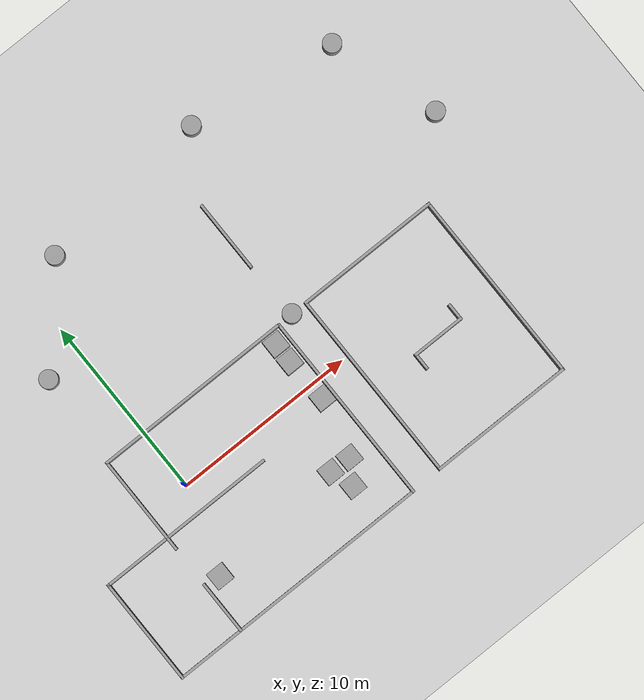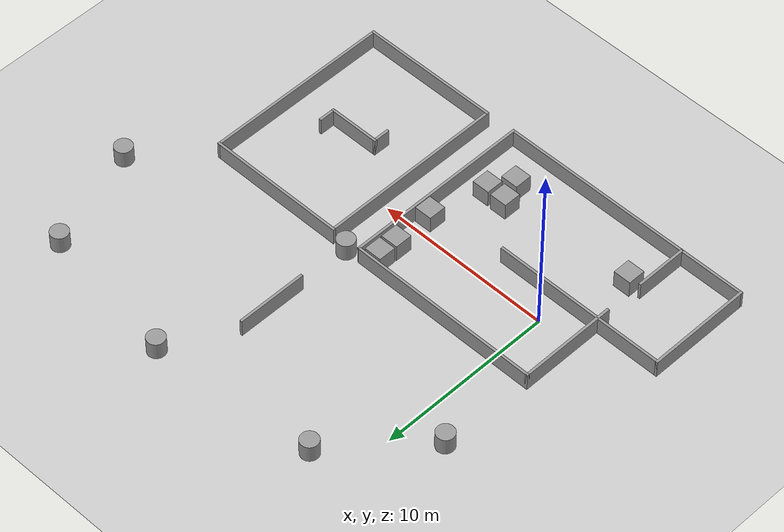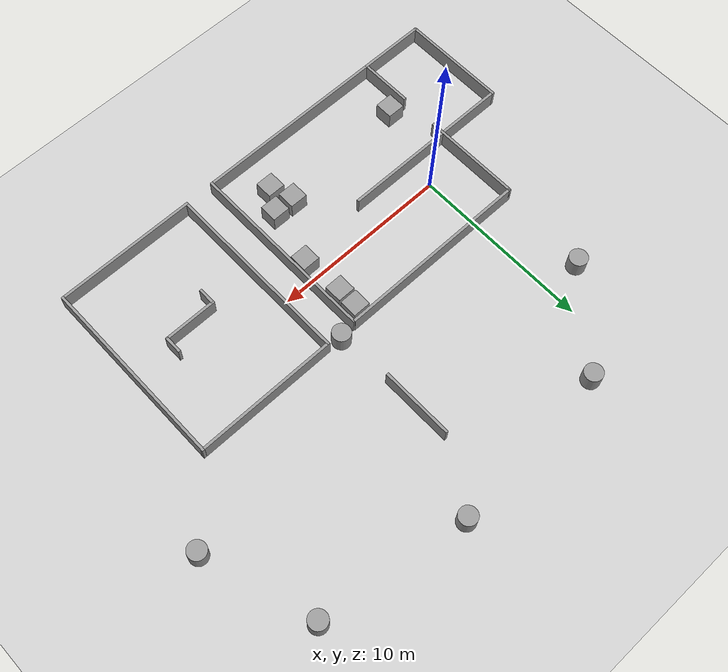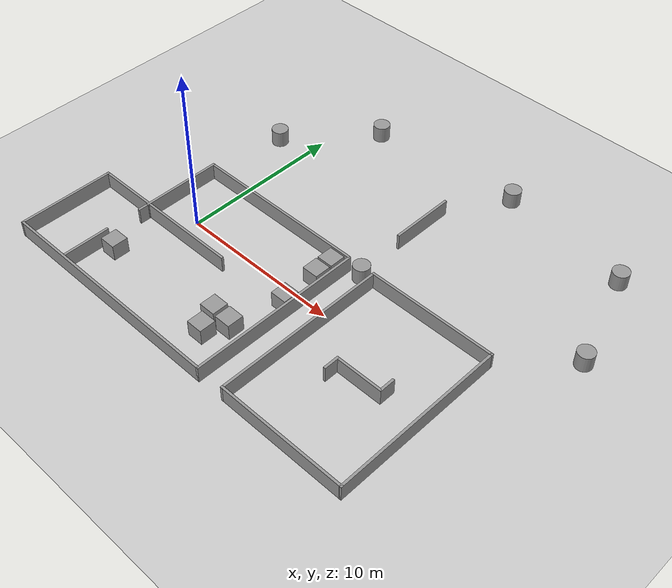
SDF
<sdf version="1.7">
 <world name="default">
  <light name="sun" type="directional">
   <pose>0 0 10 0 -0 0</pose>
   <diffuse>0.8 0.8 0.8 1</diffuse>
   <specular>0.2 0.2 0.2 1</specular>
   <attenuation>
    <range>1000</range>
    <constant>0.9</constant>
    <linear>0.01</linear>
    <quadratic>0.001</quadratic>
   </attenuation>
   <direction>-0.5 0.1 -0.9</direction>
   <spot><inner_angle>0</inner_angle><outer_angle>0</outer_angle><falloff>0</falloff></spot>
  </light>
  <model name="ground_plane">
   <static>1</static>
   <link name="link">
    <collision name="collision">
     <geometry><plane><normal>0 0 1</normal><size>100 100</size></plane></geometry>
     <surface>
      <contact><collide_bitmask>65535</collide_bitmask></contact>
      <friction><ode><mu>100</mu><mu2>50</mu2></ode></friction>
     </surface>
    </collision>
    <visual name="visual">
     <cast_shadows>0</cast_shadows>
     <geometry><plane><normal>0 0 1</normal><size>100 100</size></plane></geometry>
     <material>
      <script><uri>file://media/materials/scripts/gazebo.material</uri><name>Gazebo/Grey</name></script>
     </material>
    </visual>
   </link>
  </model>
  <gravity>0 0 -9.8</gravity>
  <magnetic_field>6e-06 2.3e-05 -4.2e-05</magnetic_field>
  <atmosphere type="adiabatic"/>
  <physics type="ode">
   <max_step_size>0.001</max_step_size>
   <real_time_factor>1</real_time_factor>
   <real_time_update_rate>1000</real_time_update_rate>
  </physics>
  <scene><ambient>0.4 0.4 0.4 1</ambient><background>0.7 0.7 0.7 1</background><shadows>1</shadows></scene>
  <spherical_coordinates>
   <surface_model>EARTH_WGS84</surface_model>
   <latitude_deg>0</latitude_deg>
   <longitude_deg>0</longitude_deg>
   <elevation>0</elevation>
   <heading_deg>0</heading_deg>
  </spherical_coordinates>
  <model name="racecar_rl_env3">
   <pose>6.0535 1.513 0 0 -0 0</pose>
   <link name="Wall_0">
    <collision name="Wall_0_Collision">
     <geometry><box><size>6 0.15 1</size></box></geometry>
     <pose>0 0 0.5 0 -0 0</pose>
    </collision>
    <visual name="Wall_0_Visual">
     <pose>0 0 0.5 0 -0 0</pose>
     <geometry><box><size>6 0.15 1</size></box></geometry>
     <material>
      <script><uri>file://media/materials/scripts/gazebo.material</uri><name>Gazebo/Grey</name></script>
      <ambient>1 1 1 1</ambient>
     </material>
     <meta><layer>0</layer></meta>
    </visual>
    <pose>-12.1305 -5.889 0 0 -0 1.5708</pose>
   </link>
   <link name="Wall_1">
    <collision name="Wall_1_Collision">
     <geometry><box><size>9.98 0.15 1</size></box></geometry>
     <pose>0 0 0.5 0 -0 0</pose>
    </collision>
    <visual name="Wall_1_Visual">
     <pose>0 0 0.5 0 -0 0</pose>
     <geometry><box><size>9.98 0.15 1</size></box></geometry>
     <material>
      <script><uri>file://media/materials/scripts/gazebo.material</uri><name>Gazebo/Grey</name></script>
      <ambient>1 1 1 1</ambient>
     </material>
     <meta><layer>0</layer></meta>
    </visual>
    <pose>-7.2155 -2.964 0 0 -0 0</pose>
   </link>
   <link name="Wall_10">
    <collision name="Wall_10_Collision">
     <geometry><box><size>11 0.15 1</size></box></geometry>
     <pose>0 0 0.5 0 -0 0</pose>
    </collision>
    <visual name="Wall_10_Visual">
     <pose>0 0 0.5 0 -0 0</pose>
     <geometry><box><size>11 0.15 1</size></box></geometry>
     <material>
      <script><uri>file://media/materials/scripts/gazebo.material</uri><name>Gazebo/Grey</name></script>
      <ambient>1 1 1 1</ambient>
     </material>
     <meta><layer>0</layer></meta>
    </visual>
    <pose>-2.9655 1.816 0 0 -0 0</pose>
   </link>
   <link name="Wall_14">
    <collision name="Wall_14_Collision">
     <geometry><box><size>10.75 0.15 1</size></box></geometry>
     <pose>0 0 0.5 0 -0 0</pose>
    </collision>
    <visual name="Wall_14_Visual">
     <pose>0 0 0.5 0 -0 0</pose>
     <geometry><box><size>10.75 0.15 1</size></box></geometry>
     <material>
      <script><uri>file://media/materials/scripts/gazebo.material</uri><name>Gazebo/Grey</name></script>
      <ambient>1 1 1 1</ambient>
     </material>
     <meta><layer>0</layer></meta>
    </visual>
    <pose>2.5495 -3.514 0 0 -0 1.5708</pose>
   </link>
   <link name="Wall_17">
    <collision name="Wall_17_Collision">
     <geometry><box><size>14.75 0.15 1</size></box></geometry>
     <pose>0 0 0.5 0 -0 0</pose>
    </collision>
    <visual name="Wall_17_Visual">
     <pose>0 0 0.5 0 -0 0</pose>
     <geometry><box><size>14.75 0.15 1</size></box></geometry>
     <material>
      <script><uri>file://media/materials/scripts/gazebo.material</uri><name>Gazebo/Grey</name></script>
      <ambient>1 1 1 1</ambient>
     </material>
     <meta><layer>0</layer></meta>
    </visual>
    <pose>-4.8305 -8.814 0 0 -0 0</pose>
   </link>
   <link name="Wall_19">
    <collision name="Wall_19_Collision">
     <geometry><box><size>3 0.15 1</size></box></geometry>
     <pose>0 0 0.5 0 -0 0</pose>
    </collision>
    <visual name="Wall_19_Visual">
     <pose>0 0 0.5 0 -0 0</pose>
     <geometry><box><size>3 0.15 1</size></box></geometry>
     <material>
      <script><uri>file://media/materials/scripts/gazebo.material</uri><name>Gazebo/Grey</name></script>
      <ambient>1 1 1 1</ambient>
     </material>
     <meta><layer>0</layer></meta>
    </visual>
    <pose>-8.4215 -7.347 0 0 -0 1.5708</pose>
   </link>
   <link name="Wall_21">
    <collision name="Wall_21_Collision">
     <geometry><box><size>8 0.15 1</size></box></geometry>
     <pose>0 0 0.5 0 -0 0</pose>
    </collision>
    <visual name="Wall_21_Visual">
     <pose>0 0 0.5 0 -0 0</pose>
     <geometry><box><size>8 0.15 1</size></box></geometry>
     <material>
      <script><uri>file://media/materials/scripts/gazebo.material</uri><name>Gazebo/Grey</name></script>
      <ambient>1 1 1 1</ambient>
     </material>
     <meta><layer>0</layer></meta>
    </visual>
    <pose>8.2055 -8.771 0 0 -0 0</pose>
   </link>
   <link name="Wall_22">
    <collision name="Wall_22_Collision">
     <geometry><box><size>10.75 0.15 1</size></box></geometry>
     <pose>0 0 0.5 0 -0 0</pose>
    </collision>
    <visual name="Wall_22_Visual">
     <pose>0 0 0.5 0 -0 0</pose>
     <geometry><box><size>10.75 0.15 1</size></box></geometry>
     <material>
      <script><uri>file://media/materials/scripts/gazebo.material</uri><name>Gazebo/Grey</name></script>
      <ambient>1 1 1 1</ambient>
     </material>
     <meta><layer>0</layer></meta>
    </visual>
    <pose>12.1305 -3.471 0 0 -0 1.5708</pose>
   </link>
   <link name="Wall_23">
    <collision name="Wall_23_Collision">
     <geometry><box><size>8 0.15 1</size></box></geometry>
     <pose>0 0 0.5 0 -0 0</pose>
    </collision>
    <visual name="Wall_23_Visual">
     <pose>0 0 0.5 0 -0 0</pose>
     <geometry><box><size>8 0.15 1</size></box></geometry>
     <material>
      <script><uri>file://media/materials/scripts/gazebo.material</uri><name>Gazebo/Grey</name></script>
      <ambient>1 1 1 1</ambient>
     </material>
     <meta><layer>0</layer></meta>
    </visual>
    <pose>8.2055 1.829 0 0 -0 3.14159</pose>
   </link>
   <link name="Wall_24">
    <collision name="Wall_24_Collision">
     <geometry><box><size>10.75 0.15 1</size></box></geometry>
     <pose>0 0 0.5 0 -0 0</pose>
    </collision>
    <visual name="Wall_24_Visual">
     <pose>0 0 0.5 0 -0 0</pose>
     <geometry><box><size>10.75 0.15 1</size></box></geometry>
     <material>
      <script><uri>file://media/materials/scripts/gazebo.material</uri><name>Gazebo/Grey</name></script>
      <ambient>1 1 1 1</ambient>
     </material>
     <meta><layer>0</layer></meta>
    </visual>
    <pose>4.2805 -3.471 0 0 -0 -1.5708</pose>
   </link>
   <link name="Wall_26">
    <collision name="Wall_26_Collision">
     <geometry><box><size>1 0.15 1</size></box></geometry>
     <pose>0 0 0.5 0 -0 0</pose>
    </collision>
    <visual name="Wall_26_Visual">
     <pose>0 0 0.5 0 -0 0</pose>
     <geometry><box><size>1 0.15 1</size></box></geometry>
     <material>
      <script><uri>file://media/materials/scripts/gazebo.material</uri><name>Gazebo/Grey</name></script>
      <ambient>1 1 1 1</ambient>
     </material>
     <meta><layer>0</layer></meta>
    </visual>
    <pose>6.9185 -4.042 0 0 -0 1.5708</pose>
   </link>
   <link name="Wall_27">
    <collision name="Wall_27_Collision">
     <geometry><box><size>3 0.15 1</size></box></geometry>
     <pose>0 0 0.5 0 -0 0</pose>
    </collision>
    <visual name="Wall_27_Visual">
     <pose>0 0 0.5 0 -0 0</pose>
     <geometry><box><size>3 0.15 1</size></box></geometry>
     <material>
      <script><uri>file://media/materials/scripts/gazebo.material</uri><name>Gazebo/Grey</name></script>
      <ambient>1 1 1 1</ambient>
     </material>
     <meta><layer>0</layer></meta>
    </visual>
    <pose>8.3435 -3.617 0 0 -0 0</pose>
   </link>
   <link name="Wall_28">
    <collision name="Wall_28_Collision">
     <geometry><box><size>1 0.15 1</size></box></geometry>
     <pose>0 0 0.5 0 -0 0</pose>
    </collision>
    <visual name="Wall_28_Visual">
     <pose>0 0 0.5 0 -0 0</pose>
     <geometry><box><size>1 0.15 1</size></box></geometry>
     <material>
      <script><uri>file://media/materials/scripts/gazebo.material</uri><name>Gazebo/Grey</name></script>
      <ambient>1 1 1 1</ambient>
     </material>
     <meta><layer>0</layer></meta>
    </visual>
    <pose>9.7685 -3.192 0 0 -0 1.5708</pose>
   </link>
   <link name="Wall_30">
    <collision name="Wall_30_Collision">
     <geometry><box><size>4 0.15 1</size></box></geometry>
     <pose>0 0 0.5 0 -0 0</pose>
    </collision>
    <visual name="Wall_30_Visual">
     <pose>0 0 0.5 0 -0 0</pose>
     <geometry><box><size>4 0.15 1</size></box></geometry>
     <material>
      <script><uri>file://media/materials/scripts/gazebo.material</uri><name>Gazebo/Grey</name></script>
      <ambient>1 1 1 1</ambient>
     </material>
     <meta><layer>0</layer></meta>
    </visual>
    <pose>3.2865 6.889 0 0 -0 1.5708</pose>
   </link>
   <link name="Wall_6">
    <collision name="Wall_6_Collision">
     <geometry><box><size>0.75 0.15 1</size></box></geometry>
     <pose>0 0 0.5 0 -0 0</pose>
    </collision>
    <visual name="Wall_6_Visual">
     <pose>0 0 0.5 0 -0 0</pose>
     <geometry><box><size>0.75 0.15 1</size></box></geometry>
     <material>
      <script><uri>file://media/materials/scripts/gazebo.material</uri><name>Gazebo/Grey</name></script>
      <ambient>1 1 1 1</ambient>
     </material>
     <meta><layer>0</layer></meta>
    </visual>
    <pose>-8.3905 -3.334 0 0 -0 -1.5708</pose>
   </link>
   <link name="Wall_9">
    <collision name="Wall_9_Collision">
     <geometry><box><size>5 0.15 1</size></box></geometry>
     <pose>0 0 0.5 0 -0 0</pose>
    </collision>
    <visual name="Wall_9_Visual">
     <pose>0 0 0.5 0 -0 0</pose>
     <geometry><box><size>5 0.15 1</size></box></geometry>
     <material>
      <script><uri>file://media/materials/scripts/gazebo.material</uri><name>Gazebo/Grey</name></script>
      <ambient>1 1 1 1</ambient>
     </material>
     <meta><layer>0</layer></meta>
    </visual>
    <pose>-8.3905 -0.609 0 0 -0 1.5708</pose>
   </link>
   <static>1</static>
  </model>
  <model name="unit_box">
   <pose>6.45113 -5.21448 0.499995 0 1e-05 0</pose>
   <link name="link">
    <inertial>
     <mass>1</mass>
     <inertia>
      <ixx>0.166667</ixx>
      <ixy>0</ixy>
      <ixz>0</ixz>
      <iyy>0.166667</iyy>
      <iyz>0</iyz>
      <izz>0.166667</izz>
     </inertia>
    </inertial>
    <collision name="collision"><geometry><box><size>1 1 1</size></box></geometry></collision>
    <visual name="visual">
     <geometry><box><size>1 1 1</size></box></geometry>
     <material>
      <script><name>Gazebo/Grey</name><uri>file://media/materials/scripts/gazebo.material</uri></script>
     </material>
    </visual>
   </link>
  </model>
  <model name="unit_box_0">
   <pose>-1.48194 -4.5697 0.499995 -1e-05 -0 -0</pose>
   <link name="link">
    <inertial>
     <mass>1</mass>
     <inertia>
      <ixx>0.166667</ixx>
      <ixy>0</ixy>
      <ixz>0</ixz>
      <iyy>0.166667</iyy>
      <iyz>0</iyz>
      <izz>0.166667</izz>
     </inertia>
    </inertial>
    <collision name="collision"><geometry><box><size>1 1 1</size></box></geometry></collision>
    <visual name="visual">
     <geometry><box><size>1 1 1</size></box></geometry>
     <material>
      <script><name>Gazebo/Grey</name><uri>file://media/materials/scripts/gazebo.material</uri></script>
     </material>
    </visual>
   </link>
  </model>
  <model name="unit_box_1">
   <pose>7.88854 2.655 0.499995 0 1e-05 0</pose>
   <link name="link">
    <inertial>
     <mass>1</mass>
     <inertia>
      <ixx>0.166667</ixx>
      <ixy>0</ixy>
      <ixz>0</ixz>
      <iyy>0.166667</iyy>
      <iyz>0</iyz>
      <izz>0.166667</izz>
     </inertia>
    </inertial>
    <collision name="collision"><geometry><box><size>1 1 1</size></box></geometry></collision>
    <visual name="visual">
     <geometry><box><size>1 1 1</size></box></geometry>
     <material>
      <script><name>Gazebo/Grey</name><uri>file://media/materials/scripts/gazebo.material</uri></script>
     </material>
    </visual>
   </link>
  </model>
  <model name="unit_box_2">
   <pose>7.88159 1.55255 0.499995 -1e-05 -0 -0</pose>
   <link name="link">
    <inertial>
     <mass>1</mass>
     <inertia>
      <ixx>0.166667</ixx>
      <ixy>0</ixy>
      <ixz>0</ixz>
      <iyy>0.166667</iyy>
      <iyz>0</iyz>
      <izz>0.166667</izz>
     </inertia>
    </inertial>
    <collision name="collision"><geometry><box><size>1 1 1</size></box></geometry></collision>
    <visual name="visual">
     <geometry><box><size>1 1 1</size></box></geometry>
     <material>
      <script><name>Gazebo/Grey</name><uri>file://media/materials/scripts/gazebo.material</uri></script>
     </material>
    </visual>
   </link>
  </model>
  <model name="unit_box_3">
   <pose>7.19658 -4.01091 0.499995 0 1e-05 0</pose>
   <link name="link">
    <inertial>
     <mass>1</mass>
     <inertia>
      <ixx>0.166667</ixx>
      <ixy>0</ixy>
      <ixz>0</ixz>
      <iyy>0.166667</iyy>
      <iyz>0</iyz>
      <izz>0.166667</izz>
     </inertia>
    </inertial>
    <collision name="collision"><geometry><box><size>1 1 1</size></box></geometry></collision>
    <visual name="visual">
     <geometry><box><size>1 1 1</size></box></geometry>
     <material>
      <script><name>Gazebo/Grey</name><uri>file://media/materials/scripts/gazebo.material</uri></script>
     </material>
    </visual>
   </link>
  </model>
  <model name="unit_box_4">
   <pose>6.01928 -3.98586 0.499995 -1e-05 -0 -0</pose>
   <link name="link">
    <inertial>
     <mass>1</mass>
     <inertia>
      <ixx>0.166667</ixx>
      <ixy>0</ixy>
      <ixz>0</ixz>
      <iyy>0.166667</iyy>
      <iyz>0</iyz>
      <izz>0.166667</izz>
     </inertia>
    </inertial>
    <collision name="collision"><geometry><box><size>1 1 1</size></box></geometry></collision>
    <visual name="visual">
     <geometry><box><size>1 1 1</size></box></geometry>
     <material>
      <script><name>Gazebo/Grey</name><uri>file://media/materials/scripts/gazebo.material</uri></script>
     </material>
    </visual>
   </link>
  </model>
  <model name="unit_box_5">
   <pose>8.00011 -0.869245 0.499995 0 1e-05 0</pose>
   <link name="link">
    <inertial>
     <mass>1</mass>
     <inertia>
      <ixx>0.166667</ixx>
      <ixy>0</ixy>
      <ixz>0</ixz>
      <iyy>0.166667</iyy>
      <iyz>0</iyz>
      <izz>0.166667</izz>
     </inertia>
    </inertial>
    <collision name="collision"><geometry><box><size>1 1 1</size></box></geometry></collision>
    <visual name="visual">
     <geometry><box><size>1 1 1</size></box></geometry>
     <material>
      <script><name>Gazebo/Grey</name><uri>file://media/materials/scripts/gazebo.material</uri></script>
     </material>
    </visual>
   </link>
  </model>
  <model name="unit_cylinder">
   <pose>9.46143 3.35992 0.499992 -3e-06 4e-06 0</pose>
   <link name="link">
    <inertial>
     <mass>1</mass>
     <inertia><ixx>0.145833</ixx><ixy>0</ixy><ixz>0</ixz><iyy>0.145833</iyy><iyz>0</iyz><izz>0.125</izz></inertia>
    </inertial>
    <collision name="collision">
     <geometry><cylinder><radius>0.5</radius><length>1</length></cylinder></geometry>
    </collision>
    <visual name="visual">
     <geometry><cylinder><radius>0.5</radius><length>1</length></cylinder></geometry>
     <material>
      <script><name>Gazebo/Grey</name><uri>file://media/materials/scripts/gazebo.material</uri></script>
     </material>
    </visual>
   </link>
  </model>
  <model name="unit_cylinder_0">
   <pose>2.10204 13.0202 0.499998 3e-06 4e-06 -0</pose>
   <link name="link">
    <inertial>
     <mass>1</mass>
     <inertia><ixx>0.145833</ixx><ixy>0</ixy><ixz>0</ixz><iyy>0.145833</iyy><iyz>0</iyz><izz>0.125</izz></inertia>
    </inertial>
    <collision name="collision">
     <geometry><cylinder><radius>0.5</radius><length>1</length></cylinder></geometry>
    </collision>
    <visual name="visual">
     <geometry><cylinder><radius>0.5</radius><length>1</length></cylinder></geometry>
     <material>
      <script><name>Gazebo/Grey</name><uri>file://media/materials/scripts/gazebo.material</uri></script>
     </material>
    </visual>
   </link>
  </model>
  <model name="unit_cylinder_1">
   <pose>11.4562 13.8212 0.499997 3e-06 3e-06 0</pose>
   <link name="link">
    <inertial>
     <mass>1</mass>
     <inertia><ixx>0.145833</ixx><ixy>0</ixy><ixz>0</ixz><iyy>0.145833</iyy><iyz>0</iyz><izz>0.125</izz></inertia>
    </inertial>
    <collision name="collision">
     <geometry><cylinder><radius>0.5</radius><length>1</length></cylinder></geometry>
    </collision>
    <visual name="visual">
     <geometry><cylinder><radius>0.5</radius><length>1</length></cylinder></geometry>
     <material>
      <script><name>Gazebo/Grey</name><uri>file://media/materials/scripts/gazebo.material</uri></script>
     </material>
    </visual>
   </link>
  </model>
  <model name="unit_cylinder_2">
   <pose>-1.99404 8.38301 0.499997 3e-06 4e-06 -0</pose>
   <link name="link">
    <inertial>
     <mass>1</mass>
     <inertia><ixx>0.145833</ixx><ixy>0</ixy><ixz>0</ixz><iyy>0.145833</iyy><iyz>0</iyz><izz>0.125</izz></inertia>
    </inertial>
    <collision name="collision">
     <geometry><cylinder><radius>0.5</radius><length>1</length></cylinder></geometry>
    </collision>
    <visual name="visual">
     <geometry><cylinder><radius>0.5</radius><length>1</length></cylinder></geometry>
     <material>
      <script><name>Gazebo/Grey</name><uri>file://media/materials/scripts/gazebo.material</uri></script>
     </material>
    </visual>
   </link>
  </model>
  <model name="unit_cylinder_3">
   <pose>19.4958 12.6184 0.499993 -3e-06 -4e-06 -0</pose>
   <link name="link">
    <inertial>
     <mass>1</mass>
     <inertia><ixx>0.145833</ixx><ixy>0</ixy><ixz>0</ixz><iyy>0.145833</iyy><iyz>0</iyz><izz>0.125</izz></inertia>
    </inertial>
    <collision name="collision">
     <geometry><cylinder><radius>0.5</radius><length>1</length></cylinder></geometry>
    </collision>
    <visual name="visual">
     <geometry><cylinder><radius>0.5</radius><length>1</length></cylinder></geometry>
     <material>
      <script><name>Gazebo/Grey</name><uri>file://media/materials/scripts/gazebo.material</uri></script>
     </material>
    </visual>
   </link>
  </model>
  <model name="unit_cylinder_4">
   <pose>21.3866 6.74217 0.499997 3e-06 4e-06 -0</pose>
   <link name="link">
    <inertial>
     <mass>1</mass>
     <inertia><ixx>0.145833</ixx><ixy>0</ixy><ixz>0</ixz><iyy>0.145833</iyy><iyz>0</iyz><izz>0.125</izz></inertia>
    </inertial>
    <collision name="collision">
     <geometry><cylinder><radius>0.5</radius><length>1</length></cylinder></geometry>
    </collision>
    <visual name="visual">
     <geometry><cylinder><radius>0.5</radius><length>1</length></cylinder></geometry>
     <material>
      <script><name>Gazebo/Grey</name><uri>file://media/materials/scripts/gazebo.material</uri></script>
     </material>
    </visual>
   </link>
  </model>
 </world>
</sdf>
